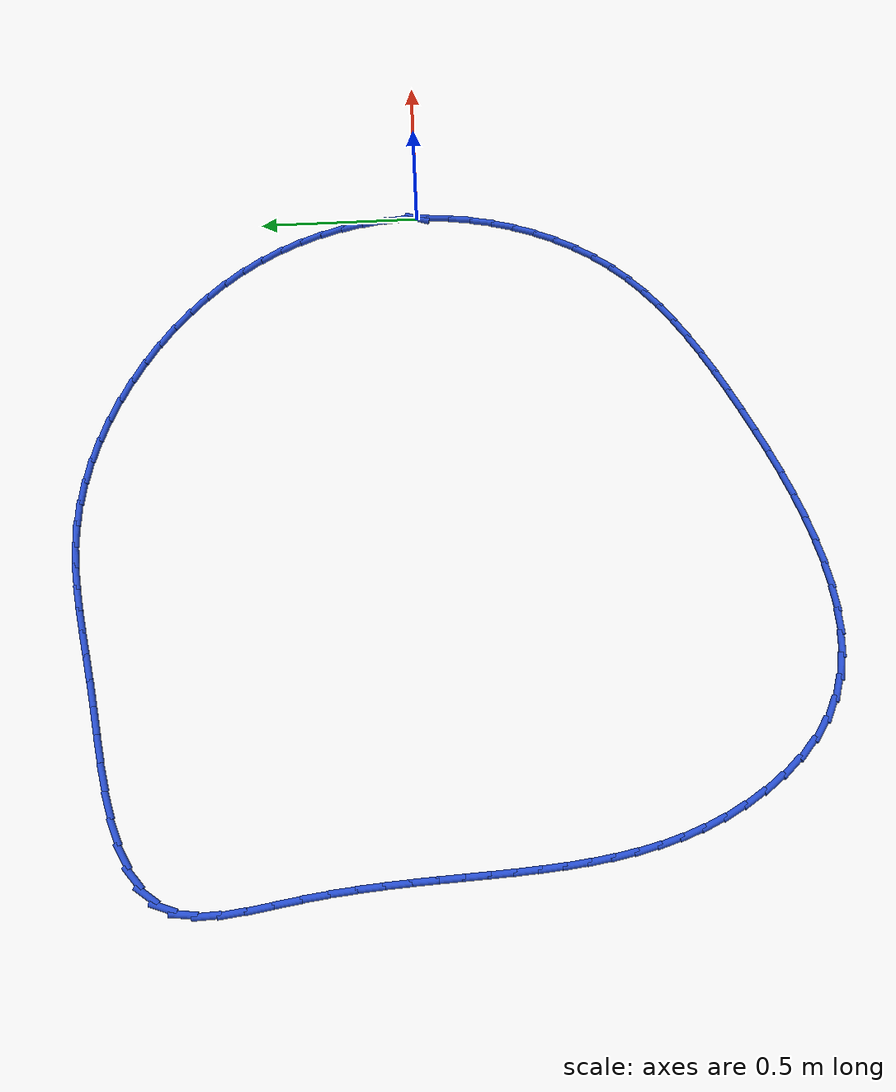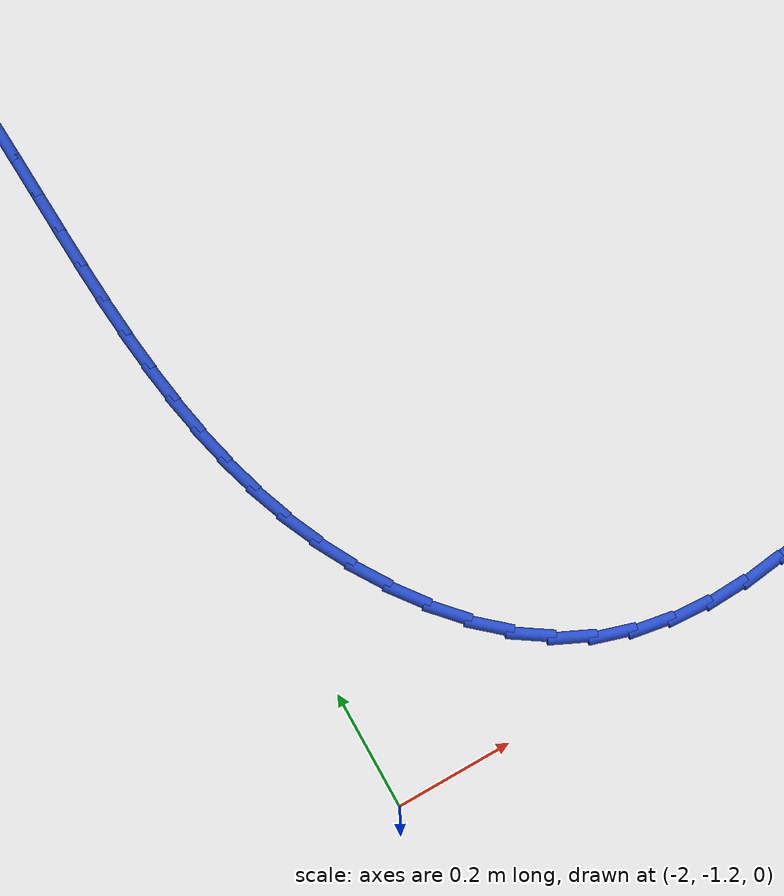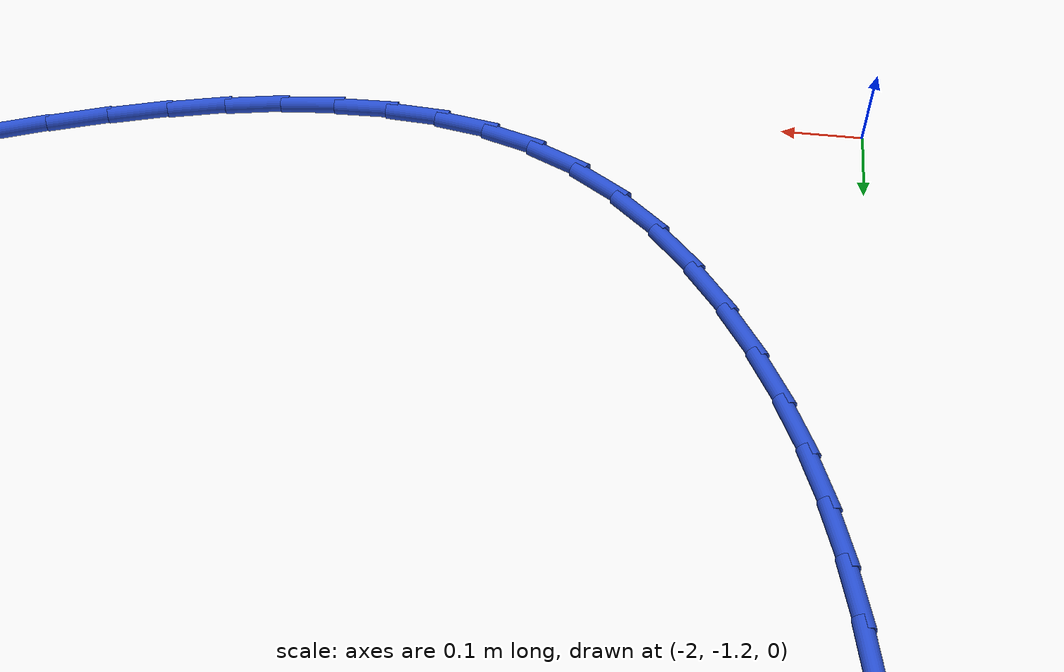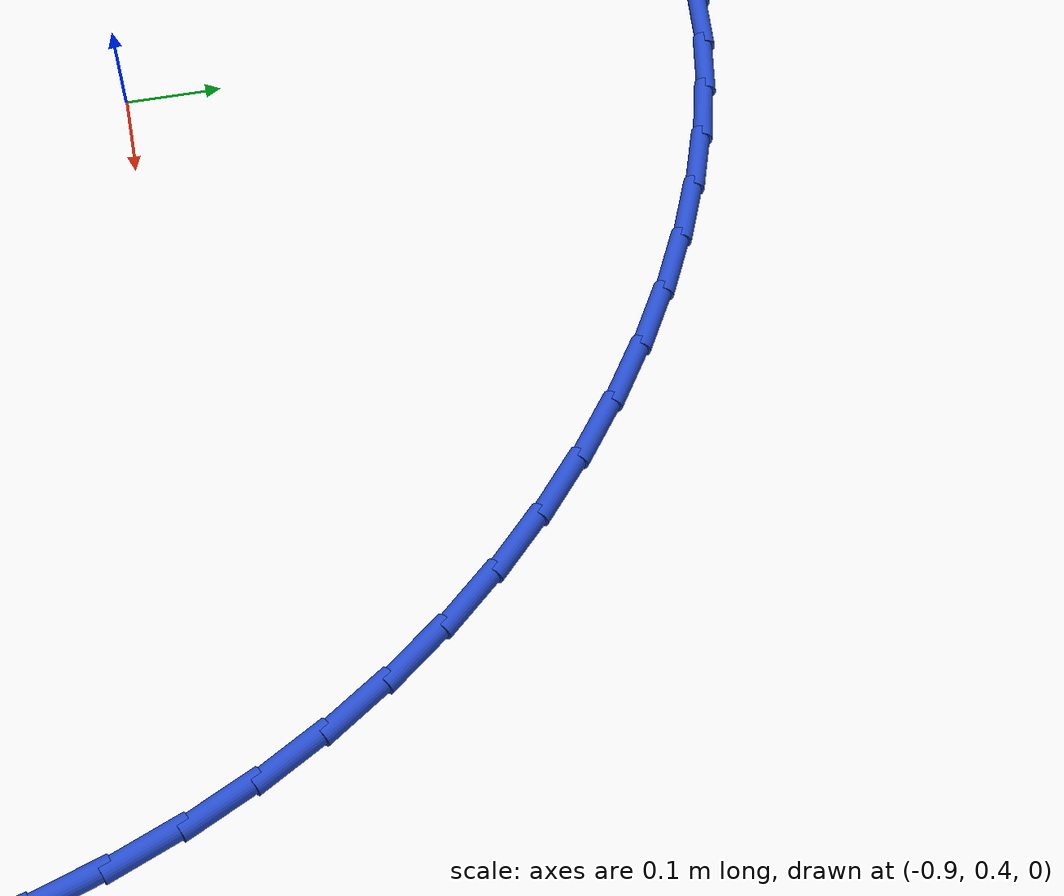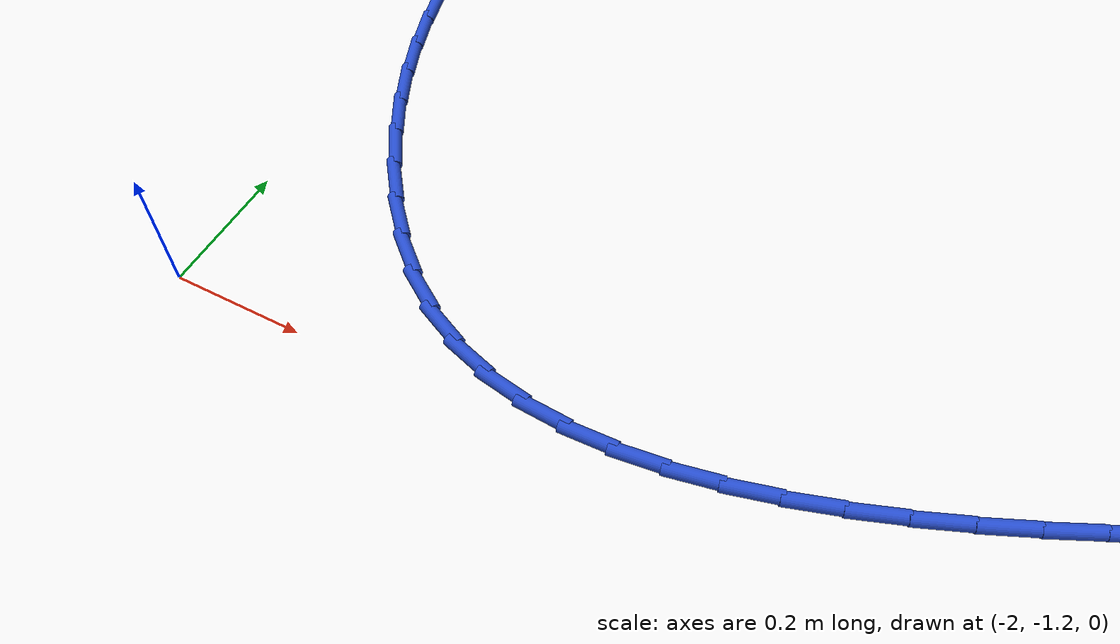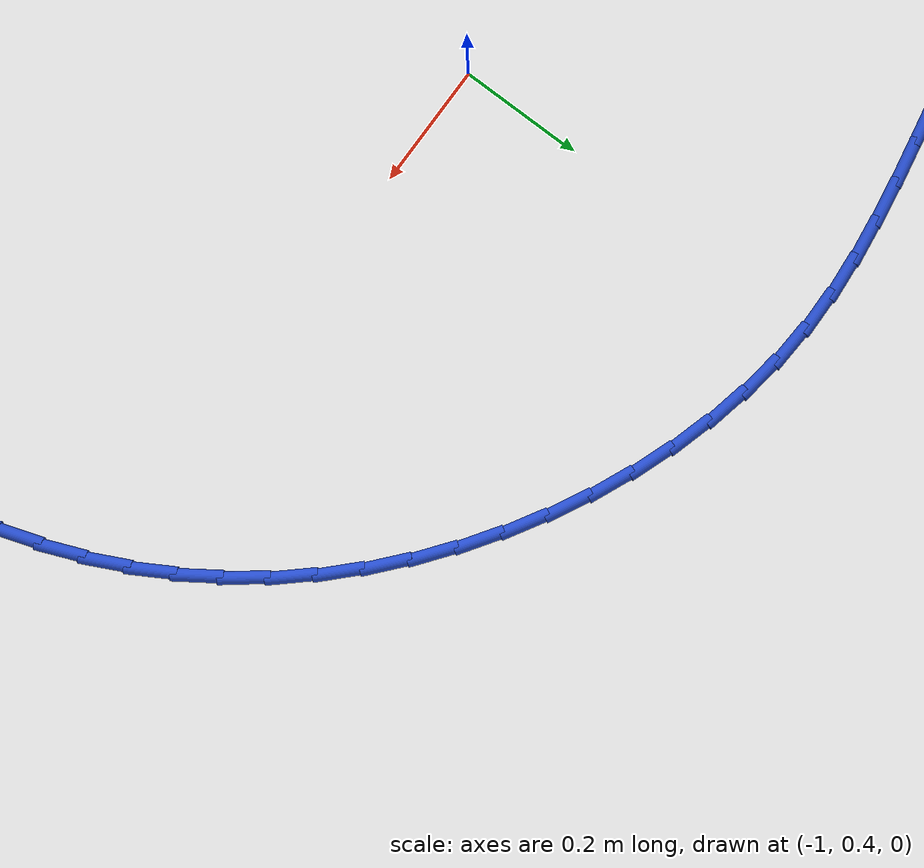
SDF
<sdf version="1.6">
 <world name="default">
  <light name="sun" type="directional">
   <pose>0 0 10 0 -0 0</pose>
   <diffuse>0.8 0.8 0.8 1</diffuse>
   <specular>0.2 0.2 0.2 1</specular>
   <attenuation>
    <range>1000</range>
    <constant>0.9</constant>
    <linear>0.01</linear>
    <quadratic>0.001</quadratic>
   </attenuation>
   <direction>-0.5 0.1 -0.9</direction>
  </light>
  <model name="ground_plane">
   <static>1</static>
   <link name="link">
    <collision name="collision">
     <geometry><plane><normal>0 0 1</normal><size>100 100</size></plane></geometry>
     <surface><friction><ode><mu>100</mu><mu2>50</mu2></ode></friction></surface>
    </collision>
    <visual name="visual">
     <cast_shadows>0</cast_shadows>
     <geometry><plane><normal>0 0 1</normal><size>100 100</size></plane></geometry>
     <material>
      <script><uri>file://media/materials/scripts/gazebo.material</uri><name>Gazebo/WhiteGlow</name></script>
     </material>
    </visual>
   </link>
  </model>
  <gravity>0 0 -9.8</gravity>
  <magnetic_field>6e-06 2.3e-05 -4.2e-05</magnetic_field>
  <atmosphere type="adiabatic"/>
  <physics name="default_physics" default="0" type="ode">
   <max_step_size>0.001</max_step_size>
   <real_time_factor>1</real_time_factor>
   <real_time_update_rate>1000</real_time_update_rate>
  </physics>
  <scene><ambient>0.4 0.4 0.4 1</ambient><background>0.7 0.7 0.7 1</background><shadows>1</shadows></scene>
  <spherical_coordinates>
   <surface_model>EARTH_WGS84</surface_model>
   <latitude_deg>0</latitude_deg>
   <longitude_deg>0</longitude_deg>
   <elevation>0</elevation>
   <heading_deg>0</heading_deg>
  </spherical_coordinates>
  <model name="line">
   <link name="link_0">
    <pose>-1.0408340855860843e-17 -5.551115123125783e-17 0.01 0 1.57 -1.5405701202909152</pose>
    <collision name="collision">
     <geometry><cylinder><radius>0.01</radius><length>0.08</length></cylinder></geometry>
    </collision>
    <visual name="visual">
     <material>
      <script><name>Gazebo/Blue</name><uri>file://media/materials/scripts/gazebo.material</uri></script>
     </material>
     <geometry><cylinder><radius>0.01</radius><length>0.08</length></cylinder></geometry>
    </visual>
   </link>
   <link name="link_1">
    <pose>-0.002102133106626445 0.0695255251843486 0.01 0 1.57 -1.4705244471689425</pose>
    <collision name="collision">
     <geometry><cylinder><radius>0.01</radius><length>0.08</length></cylinder></geometry>
    </collision>
    <visual name="visual">
     <material>
      <script><name>Gazebo/Blue</name><uri>file://media/materials/scripts/gazebo.material</uri></script>
     </material>
     <geometry><cylinder><radius>0.01</radius><length>0.08</length></cylinder></geometry>
    </visual>
   </link>
   <link name="link_2">
    <pose>-0.009032214268993836 0.13840664672821126 0.01 0 1.57 -1.4004155286825164</pose>
    <collision name="collision">
     <geometry><cylinder><radius>0.01</radius><length>0.08</length></cylinder></geometry>
    </collision>
    <visual name="visual">
     <material>
      <script><name>Gazebo/Blue</name><uri>file://media/materials/scripts/gazebo.material</uri></script>
     </material>
     <geometry><cylinder><radius>0.01</radius><length>0.08</length></cylinder></geometry>
    </visual>
   </link>
   <link name="link_3">
    <pose>-0.020733607389154633 0.2064186793257638 0.01 0 1.57 -1.3302316812102282</pose>
    <collision name="collision">
     <geometry><cylinder><radius>0.01</radius><length>0.08</length></cylinder></geometry>
    </collision>
    <visual name="visual">
     <material>
      <script><name>Gazebo/Blue</name><uri>file://media/materials/scripts/gazebo.material</uri></script>
     </material>
     <geometry><cylinder><radius>0.01</radius><length>0.08</length></cylinder></geometry>
    </visual>
   </link>
   <link name="link_4">
    <pose>-0.03714967636916126 0.2733369376711821 0.01 0 1.57 -1.2599575085506316</pose>
    <collision name="collision">
     <geometry><cylinder><radius>0.01</radius><length>0.08</length></cylinder></geometry>
    </collision>
    <visual name="visual">
     <material>
      <script><name>Gazebo/Blue</name><uri>file://media/materials/scripts/gazebo.material</uri></script>
     </material>
     <geometry><cylinder><radius>0.01</radius><length>0.08</length></cylinder></geometry>
    </visual>
   </link>
   <link name="link_5">
    <pose>-0.05822378511106613 0.3389367364586421 0.01 0 1.57 -1.1895788900700388</pose>
    <collision name="collision">
     <geometry><cylinder><radius>0.01</radius><length>0.08</length></cylinder></geometry>
    </collision>
    <visual name="visual">
     <material>
      <script><name>Gazebo/Blue</name><uri>file://media/materials/scripts/gazebo.material</uri></script>
     </material>
     <geometry><cylinder><radius>0.01</radius><length>0.08</length></cylinder></geometry>
    </visual>
   </link>
   <link name="link_6">
    <pose>-0.08389929751692168 0.4029933903823196 0.01 0 1.57 -1.1190879990135894</pose>
    <collision name="collision">
     <geometry><cylinder><radius>0.01</radius><length>0.08</length></cylinder></geometry>
    </collision>
    <visual name="visual">
     <material>
      <script><name>Gazebo/Blue</name><uri>file://media/materials/scripts/gazebo.material</uri></script>
     </material>
     <geometry><cylinder><radius>0.01</radius><length>0.08</length></cylinder></geometry>
    </visual>
   </link>
   <link name="link_7">
    <pose>-0.11411957748878035 0.46528221413639054 0.01 0 1.57 -1.0484881223766074</pose>
    <collision name="collision">
     <geometry><cylinder><radius>0.01</radius><length>0.08</length></cylinder></geometry>
    </collision>
    <visual name="visual">
     <material>
      <script><name>Gazebo/Blue</name><uri>file://media/materials/scripts/gazebo.material</uri></script>
     </material>
     <geometry><cylinder><radius>0.01</radius><length>0.08</length></cylinder></geometry>
    </visual>
   </link>
   <link name="link_8">
    <pose>-0.14882798892869453 0.5255785224150308 0.01 0 1.57 -0.9777980427152652</pose>
    <collision name="collision">
     <geometry><cylinder><radius>0.01</radius><length>0.08</length></cylinder></geometry>
    </collision>
    <visual name="visual">
     <material>
      <script><name>Gazebo/Blue</name><uri>file://media/materials/scripts/gazebo.material</uri></script>
     </material>
     <geometry><cylinder><radius>0.01</radius><length>0.08</length></cylinder></geometry>
    </visual>
   </link>
   <link name="link_9">
    <pose>-0.1879678957387167 0.5836576299124163 0.01 0 1.57 -0.9075542999481457</pose>
    <collision name="collision">
     <geometry><cylinder><radius>0.01</radius><length>0.08</length></cylinder></geometry>
    </collision>
    <visual name="visual">
     <material>
      <script><name>Gazebo/Blue</name><uri>file://media/materials/scripts/gazebo.material</uri></script>
     </material>
     <geometry><cylinder><radius>0.01</radius><length>0.08</length></cylinder></geometry>
    </visual>
   </link>
   <link name="link_10">
    <pose>-0.23143829991291925 0.6392952705631338 0.01 0 1.57 -0.8400449130114034</pose>
    <collision name="collision">
     <geometry><cylinder><radius>0.01</radius><length>0.08</length></cylinder></geometry>
    </collision>
    <visual name="visual">
     <material>
      <script><name>Gazebo/Blue</name><uri>file://media/materials/scripts/gazebo.material</uri></script>
     </material>
     <geometry><cylinder><radius>0.01</radius><length>0.08</length></cylinder></geometry>
    </visual>
   </link>
   <link name="link_11">
    <pose>-0.2789173890936182 0.6922692650988411 0.01 0 1.57 -0.7754309936989903</pose>
    <collision name="collision">
     <geometry><cylinder><radius>0.01</radius><length>0.08</length></cylinder></geometry>
    </collision>
    <visual name="visual">
     <material>
      <script><name>Gazebo/Blue</name><uri>file://media/materials/scripts/gazebo.material</uri></script>
     </material>
     <geometry><cylinder><radius>0.01</radius><length>0.08</length></cylinder></geometry>
    </visual>
   </link>
   <link name="link_12">
    <pose>-0.3300147797786927 0.7423580822800141 0.01 0 1.57 -0.7130405765119909</pose>
    <collision name="collision">
     <geometry><cylinder><radius>0.01</radius><length>0.08</length></cylinder></geometry>
    </collision>
    <visual name="visual">
     <material>
      <script><name>Gazebo/Blue</name><uri>file://media/materials/scripts/gazebo.material</uri></script>
     </material>
     <geometry><cylinder><radius>0.01</radius><length>0.08</length></cylinder></geometry>
    </visual>
   </link>
   <link name="link_13">
    <pose>-0.38434006712596264 0.7893401910688012 0.01 0 1.57 -0.6521967441203458</pose>
    <collision name="collision">
     <geometry><cylinder><radius>0.01</radius><length>0.08</length></cylinder></geometry>
    </collision>
    <visual name="visual">
     <material>
      <script><name>Gazebo/Blue</name><uri>file://media/materials/scripts/gazebo.material</uri></script>
     </material>
     <geometry><cylinder><radius>0.01</radius><length>0.08</length></cylinder></geometry>
    </visual>
   </link>
   <link name="link_14">
    <pose>-0.44150284629324776 0.8329940604273514 0.01 0 1.57 -0.5922203583246225</pose>
    <collision name="collision">
     <geometry><cylinder><radius>0.01</radius><length>0.08</length></cylinder></geometry>
    </collision>
    <visual name="visual">
     <material>
      <script><name>Gazebo/Blue</name><uri>file://media/materials/scripts/gazebo.material</uri></script>
     </material>
     <geometry><cylinder><radius>0.01</radius><length>0.08</length></cylinder></geometry>
    </visual>
   </link>
   <link name="link_15">
    <pose>-0.501112712438368 0.8730981593178132 0.01 0 1.57 -0.5324268377995418</pose>
    <collision name="collision">
     <geometry><cylinder><radius>0.01</radius><length>0.08</length></cylinder></geometry>
    </collision>
    <visual name="visual">
     <material>
      <script><name>Gazebo/Blue</name><uri>file://media/materials/scripts/gazebo.material</uri></script>
     </material>
     <geometry><cylinder><radius>0.01</radius><length>0.08</length></cylinder></geometry>
    </visual>
   </link>
   <link name="link_16">
    <pose>-0.5627792607191436 0.9094309567023364 0.01 0 1.57 -0.4721194599505032</pose>
    <collision name="collision">
     <geometry><cylinder><radius>0.01</radius><length>0.08</length></cylinder></geometry>
    </collision>
    <visual name="visual">
     <material>
      <script><name>Gazebo/Blue</name><uri>file://media/materials/scripts/gazebo.material</uri></script>
     </material>
     <geometry><cylinder><radius>0.01</radius><length>0.08</length></cylinder></geometry>
    </visual>
   </link>
   <link name="link_17">
    <pose>-0.6261120862933942 0.941770921543069 0.01 0 1.57 -0.4105810657619128</pose>
    <collision name="collision">
     <geometry><cylinder><radius>0.01</radius><length>0.08</length></cylinder></geometry>
    </collision>
    <visual name="visual">
     <material>
      <script><name>Gazebo/Blue</name><uri>file://media/materials/scripts/gazebo.material</uri></script>
     </material>
     <geometry><cylinder><radius>0.01</radius><length>0.08</length></cylinder></geometry>
    </visual>
   </link>
   <link name="link_18">
    <pose>-0.6907207843189399 0.9698965228021604 0.01 0 1.57 -0.3470660265471138</pose>
    <collision name="collision">
     <geometry><cylinder><radius>0.01</radius><length>0.08</length></cylinder></geometry>
    </collision>
    <visual name="visual">
     <material>
      <script><name>Gazebo/Blue</name><uri>file://media/materials/scripts/gazebo.material</uri></script>
     </material>
     <geometry><cylinder><radius>0.01</radius><length>0.08</length></cylinder></geometry>
    </visual>
   </link>
   <link name="link_19">
    <pose>-0.7562149499536007 0.9935862294417593 0.01 0 1.57 -0.28079472806204997</pose>
    <collision name="collision">
     <geometry><cylinder><radius>0.01</radius><length>0.08</length></cylinder></geometry>
    </collision>
    <visual name="visual">
     <material>
      <script><name>Gazebo/Blue</name><uri>file://media/materials/scripts/gazebo.material</uri></script>
     </material>
     <geometry><cylinder><radius>0.01</radius><length>0.08</length></cylinder></geometry>
    </visual>
   </link>
   <link name="link_20">
    <pose>-0.8222041783551963 1.0126185104240144 0.01 0 1.57 -0.2109537149791559</pose>
    <collision name="collision">
     <geometry><cylinder><radius>0.01</radius><length>0.08</length></cylinder></geometry>
    </collision>
    <visual name="visual">
     <material>
      <script><name>Gazebo/Blue</name><uri>file://media/materials/scripts/gazebo.material</uri></script>
     </material>
     <geometry><cylinder><radius>0.01</radius><length>0.08</length></cylinder></geometry>
    </visual>
   </link>
   <link name="link_21">
    <pose>-0.8882980646815466 1.0267718347110748 0.01 0 1.57 -0.13670605887592133</pose>
    <collision name="collision">
     <geometry><cylinder><radius>0.01</radius><length>0.08</length></cylinder></geometry>
    </collision>
    <visual name="visual">
     <material>
      <script><name>Gazebo/Blue</name><uri>file://media/materials/scripts/gazebo.material</uri></script>
     </material>
     <geometry><cylinder><radius>0.01</radius><length>0.08</length></cylinder></geometry>
    </visual>
   </link>
   <link name="link_22">
    <pose>-0.9541062040904715 1.0358246712650891 0.01 0 1.57 -0.057567431472103824</pose>
    <collision name="collision">
     <geometry><cylinder><radius>0.01</radius><length>0.08</length></cylinder></geometry>
    </collision>
    <visual name="visual">
     <material>
      <script><name>Gazebo/Blue</name><uri>file://media/materials/scripts/gazebo.material</uri></script>
     </material>
     <geometry><cylinder><radius>0.01</radius><length>0.08</length></cylinder></geometry>
    </visual>
   </link>
   <link name="link_23">
    <pose>-1.0192607395773203 1.0395795993939512 0.01 0 1.57 0.01903210949202566</pose>
    <collision name="collision">
     <geometry><cylinder><radius>0.01</radius><length>0.08</length></cylinder></geometry>
    </collision>
    <visual name="visual">
     <material>
      <script><name>Gazebo/Blue</name><uri>file://media/materials/scripts/gazebo.material</uri></script>
     </material>
     <geometry><cylinder><radius>0.01</radius><length>0.08</length></cylinder></geometry>
    </visual>
   </link>
   <link name="link_24">
    <pose>-1.083871302579857 1.0383497755915452 0.01 0 1.57 0.08357357899701412</pose>
    <collision name="collision">
     <geometry><cylinder><radius>0.01</radius><length>0.08</length></cylinder></geometry>
    </collision>
    <visual name="visual">
     <material>
      <script><name>Gazebo/Blue</name><uri>file://media/materials/scripts/gazebo.material</uri></script>
     </material>
     <geometry><cylinder><radius>0.01</radius><length>0.08</length></cylinder></geometry>
    </visual>
   </link>
   <link name="link_25">
    <pose>-1.148503231814042 1.0329356429938361 0.01 0 1.57 0.13376082898311506</pose>
    <collision name="collision">
     <geometry><cylinder><radius>0.01</radius><length>0.08</length></cylinder></geometry>
    </collision>
    <visual name="visual">
     <material>
      <script><name>Gazebo/Blue</name><uri>file://media/materials/scripts/gazebo.material</uri></script>
     </material>
     <geometry><cylinder><radius>0.01</radius><length>0.08</length></cylinder></geometry>
    </visual>
   </link>
   <link name="link_26">
    <pose>-1.2137400546234542 1.0241570937903821 0.01 0 1.57 0.1688405171898677</pose>
    <collision name="collision">
     <geometry><cylinder><radius>0.01</radius><length>0.08</length></cylinder></geometry>
    </collision>
    <visual name="visual">
     <material>
      <script><name>Gazebo/Blue</name><uri>file://media/materials/scripts/gazebo.material</uri></script>
     </material>
     <geometry><cylinder><radius>0.01</radius><length>0.08</length></cylinder></geometry>
    </visual>
   </link>
   <link name="link_27">
    <pose>-1.2801652983516725 1.0128340201707406 0.01 0 1.57 0.18903874474820354</pose>
    <collision name="collision">
     <geometry><cylinder><radius>0.01</radius><length>0.08</length></cylinder></geometry>
    </collision>
    <visual name="visual">
     <material>
      <script><name>Gazebo/Blue</name><uri>file://media/materials/scripts/gazebo.material</uri></script>
     </material>
     <geometry><cylinder><radius>0.01</radius><length>0.08</length></cylinder></geometry>
    </visual>
   </link>
   <link name="link_28">
    <pose>-1.3483624903422764 0.9997863143244703 0.01 0 1.57 0.19524011143308564</pose>
    <collision name="collision">
     <geometry><cylinder><radius>0.01</radius><length>0.08</length></cylinder></geometry>
    </collision>
    <visual name="visual">
     <material>
      <script><name>Gazebo/Blue</name><uri>file://media/materials/scripts/gazebo.material</uri></script>
     </material>
     <geometry><cylinder><radius>0.01</radius><length>0.08</length></cylinder></geometry>
    </visual>
   </link>
   <link name="link_29">
    <pose>-1.4189151579388446 0.9858338684411292 0.01 0 1.57 0.1887319768483386</pose>
    <collision name="collision">
     <geometry><cylinder><radius>0.01</radius><length>0.08</length></cylinder></geometry>
    </collision>
    <visual name="visual">
     <material>
      <script><name>Gazebo/Blue</name><uri>file://media/materials/scripts/gazebo.material</uri></script>
     </material>
     <geometry><cylinder><radius>0.01</radius><length>0.08</length></cylinder></geometry>
    </visual>
   </link>
   <link name="link_30">
    <pose>-1.4924068284849572 0.9717965747102755 0.01 0 1.57 0.1744701010912176</pose>
    <collision name="collision">
     <geometry><cylinder><radius>0.01</radius><length>0.08</length></cylinder></geometry>
    </collision>
    <visual name="visual">
     <material>
      <script><name>Gazebo/Blue</name><uri>file://media/materials/scripts/gazebo.material</uri></script>
     </material>
     <geometry><cylinder><radius>0.01</radius><length>0.08</length></cylinder></geometry>
    </visual>
   </link>
   <link name="link_31">
    <pose>-1.5691202102209683 0.9582749049660813 0.01 0 1.57 0.172253111187006</pose>
    <collision name="collision">
     <geometry><cylinder><radius>0.01</radius><length>0.08</length></cylinder></geometry>
    </collision>
    <visual name="visual">
     <material>
      <script><name>Gazebo/Blue</name><uri>file://media/materials/scripts/gazebo.material</uri></script>
     </material>
     <geometry><cylinder><radius>0.01</radius><length>0.08</length></cylinder></geometry>
    </visual>
   </link>
   <link name="link_32">
    <pose>-1.6476216962914736 0.9446174342574778 0.01 0 1.57 0.18801901341655594</pose>
    <collision name="collision">
     <geometry><cylinder><radius>0.01</radius><length>0.08</length></cylinder></geometry>
    </collision>
    <visual name="visual">
     <material>
      <script><name>Gazebo/Blue</name><uri>file://media/materials/scripts/gazebo.material</uri></script>
     </material>
     <geometry><cylinder><radius>0.01</radius><length>0.08</length></cylinder></geometry>
    </visual>
   </link>
   <link name="link_33">
    <pose>-1.7258699176187922 0.9297294300064118 0.01 0 1.57 0.2228727023862176</pose>
    <collision name="collision">
     <geometry><cylinder><radius>0.01</radius><length>0.08</length></cylinder></geometry>
    </collision>
    <visual name="visual">
     <material>
      <script><name>Gazebo/Blue</name><uri>file://media/materials/scripts/gazebo.material</uri></script>
     </material>
     <geometry><cylinder><radius>0.01</radius><length>0.08</length></cylinder></geometry>
    </visual>
   </link>
   <link name="link_34">
    <pose>-1.8018227962535631 0.9125156425769896 0.01 0 1.57 0.280534957972733</pose>
    <collision name="collision">
     <geometry><cylinder><radius>0.01</radius><length>0.08</length></cylinder></geometry>
    </collision>
    <visual name="visual">
     <material>
      <script><name>Gazebo/Blue</name><uri>file://media/materials/scripts/gazebo.material</uri></script>
     </material>
     <geometry><cylinder><radius>0.01</radius><length>0.08</length></cylinder></geometry>
    </visual>
   </link>
   <link name="link_35">
    <pose>-1.8734382542464258 0.891880822333317 0.01 0 1.57 0.3679794605629663</pose>
    <collision name="collision">
     <geometry><cylinder><radius>0.01</radius><length>0.08</length></cylinder></geometry>
    </collision>
    <visual name="visual">
     <material>
      <script><name>Gazebo/Blue</name><uri>file://media/materials/scripts/gazebo.material</uri></script>
     </material>
     <geometry><cylinder><radius>0.01</radius><length>0.08</length></cylinder></geometry>
    </visual>
   </link>
   <link name="link_36">
    <pose>-1.9386742136480186 0.8667297196395004 0.01 0 1.57 0.49626185235606635</pose>
    <collision name="collision">
     <geometry><cylinder><radius>0.01</radius><length>0.08</length></cylinder></geometry>
    </collision>
    <visual name="visual">
     <material>
      <script><name>Gazebo/Blue</name><uri>file://media/materials/scripts/gazebo.material</uri></script>
     </material>
     <geometry><cylinder><radius>0.01</radius><length>0.08</length></cylinder></geometry>
    </visual>
   </link>
   <link name="link_37">
    <pose>-1.9954885965089821 0.8359670848596459 0.01 0 1.57 0.6798352627536904</pose>
    <collision name="collision">
     <geometry><cylinder><radius>0.01</radius><length>0.08</length></cylinder></geometry>
    </collision>
    <visual name="visual">
     <material>
      <script><name>Gazebo/Blue</name><uri>file://media/materials/scripts/gazebo.material</uri></script>
     </material>
     <geometry><cylinder><radius>0.01</radius><length>0.08</length></cylinder></geometry>
    </visual>
   </link>
   <link name="link_38">
    <pose>-2.0418393248799553 0.7984976683578597 0.01 0 1.57 0.9288321167092531</pose>
    <collision name="collision">
     <geometry><cylinder><radius>0.01</radius><length>0.08</length></cylinder></geometry>
    </collision>
    <visual name="visual">
     <material>
      <script><name>Gazebo/Blue</name><uri>file://media/materials/scripts/gazebo.material</uri></script>
     </material>
     <geometry><cylinder><radius>0.01</radius><length>0.08</length></cylinder></geometry>
    </visual>
   </link>
   <link name="link_39">
    <pose>-2.0756843208115767 0.7532262204982477 0.01 0 1.57 1.2233063713826309</pose>
    <collision name="collision">
     <geometry><cylinder><radius>0.01</radius><length>0.08</length></cylinder></geometry>
    </collision>
    <visual name="visual">
     <material>
      <script><name>Gazebo/Blue</name><uri>file://media/materials/scripts/gazebo.material</uri></script>
     </material>
     <geometry><cylinder><radius>0.01</radius><length>0.08</length></cylinder></geometry>
    </visual>
   </link>
   <link name="link_40">
    <pose>-2.095249832140043 0.6992056918912777 0.01 0 1.57 1.4641513857978388</pose>
    <collision name="collision">
     <geometry><cylinder><radius>0.01</radius><length>0.08</length></cylinder></geometry>
    </collision>
    <visual name="visual">
     <material>
      <script><name>Gazebo/Blue</name><uri>file://media/materials/scripts/gazebo.material</uri></script>
     </material>
     <geometry><cylinder><radius>0.01</radius><length>0.08</length></cylinder></geometry>
    </visual>
   </link>
   <link name="link_41">
    <pose>-2.101886062930835 0.6372144397528273 0.01 0 1.57 -1.5278492818462748</pose>
    <collision name="collision">
     <geometry><cylinder><radius>0.01</radius><length>0.08</length></cylinder></geometry>
    </collision>
    <visual name="visual">
     <material>
      <script><name>Gazebo/Blue</name><uri>file://media/materials/scripts/gazebo.material</uri></script>
     </material>
     <geometry><cylinder><radius>0.01</radius><length>0.08</length></cylinder></geometry>
    </visual>
   </link>
   <link name="link_42">
    <pose>-2.0989608921073777 0.5691452125616334 0.01 0 1.57 -1.4456850766708114</pose>
    <collision name="collision">
     <geometry><cylinder><radius>0.01</radius><length>0.08</length></cylinder></geometry>
    </collision>
    <visual name="visual">
     <material>
      <script><name>Gazebo/Blue</name><uri>file://media/materials/scripts/gazebo.material</uri></script>
     </material>
     <geometry><cylinder><radius>0.01</radius><length>0.08</length></cylinder></geometry>
    </visual>
   </link>
   <link name="link_43">
    <pose>-2.089875926352483 0.49690938713004423 0.01 0 1.57 -1.413128333445715</pose>
    <collision name="collision">
     <geometry><cylinder><radius>0.01</radius><length>0.08</length></cylinder></geometry>
    </collision>
    <visual name="visual">
     <material>
      <script><name>Gazebo/Blue</name><uri>file://media/materials/scripts/gazebo.material</uri></script>
     </material>
     <geometry><cylinder><radius>0.01</radius><length>0.08</length></cylinder></geometry>
    </visual>
   </link>
   <link name="link_44">
    <pose>-2.0780327723489607 0.42241834027040936 0.01 0 1.57 -1.4216081317048483</pose>
    <collision name="collision">
     <geometry><cylinder><radius>0.01</radius><length>0.08</length></cylinder></geometry>
    </collision>
    <visual name="visual">
     <material>
      <script><name>Gazebo/Blue</name><uri>file://media/materials/scripts/gazebo.material</uri></script>
     </material>
     <geometry><cylinder><radius>0.01</radius><length>0.08</length></cylinder></geometry>
    </visual>
   </link>
   <link name="link_45">
    <pose>-2.066780820733039 0.3475575323506918 0.01 0 1.57 -1.450290320659064</pose>
    <collision name="collision">
     <geometry><cylinder><radius>0.01</radius><length>0.08</length></cylinder></geometry>
    </collision>
    <visual name="visual">
     <material>
      <script><name>Gazebo/Blue</name><uri>file://media/materials/scripts/gazebo.material</uri></script>
     </material>
     <geometry><cylinder><radius>0.01</radius><length>0.08</length></cylinder></geometry>
    </visual>
   </link>
   <link name="link_46">
    <pose>-2.057798854156311 0.27338324915063555 0.01 0 1.57 -1.4755231292306006</pose>
    <collision name="collision">
     <geometry><cylinder><radius>0.01</radius><length>0.08</length></cylinder></geometry>
    </collision>
    <visual name="visual">
     <material>
      <script><name>Gazebo/Blue</name><uri>file://media/materials/scripts/gazebo.material</uri></script>
     </material>
     <geometry><cylinder><radius>0.01</radius><length>0.08</length></cylinder></geometry>
    </visual>
   </link>
   <link name="link_47">
    <pose>-2.050783086121727 0.19996776585470538 0.01 0 1.57 -1.4956569528914676</pose>
    <collision name="collision">
     <geometry><cylinder><radius>0.01</radius><length>0.08</length></cylinder></geometry>
    </collision>
    <visual name="visual">
     <material>
      <script><name>Gazebo/Blue</name><uri>file://media/materials/scripts/gazebo.material</uri></script>
     </material>
     <geometry><cylinder><radius>0.01</radius><length>0.08</length></cylinder></geometry>
    </visual>
   </link>
   <link name="link_48">
    <pose>-2.045314548002396 0.12732618918177588 0.01 0 1.57 -1.5104643188645632</pose>
    <collision name="collision">
     <geometry><cylinder><radius>0.01</radius><length>0.08</length></cylinder></geometry>
    </collision>
    <visual name="visual">
     <material>
      <script><name>Gazebo/Blue</name><uri>file://media/materials/scripts/gazebo.material</uri></script>
     </material>
     <geometry><cylinder><radius>0.01</radius><length>0.08</length></cylinder></geometry>
    </visual>
   </link>
   <link name="link_49">
    <pose>-2.040974271171426 0.05547362585072061 0.01 0 1.57 -1.5197349971626906</pose>
    <collision name="collision">
     <geometry><cylinder><radius>0.01</radius><length>0.08</length></cylinder></geometry>
    </collision>
    <visual name="visual">
     <material>
      <script><name>Gazebo/Blue</name><uri>file://media/materials/scripts/gazebo.material</uri></script>
     </material>
     <geometry><cylinder><radius>0.01</radius><length>0.08</length></cylinder></geometry>
    </visual>
   </link>
   <link name="link_50">
    <pose>-2.037343287001922 -0.015574817419585977 0.01 0 1.57 -1.5232642017289684</pose>
    <collision name="collision">
     <geometry><cylinder><radius>0.01</radius><length>0.08</length></cylinder></geometry>
    </collision>
    <visual name="visual">
     <material>
      <script><name>Gazebo/Blue</name><uri>file://media/materials/scripts/gazebo.material</uri></script>
     </material>
     <geometry><cylinder><radius>0.01</radius><length>0.08</length></cylinder></geometry>
    </visual>
   </link>
   <link name="link_51">
    <pose>-2.034002626866993 -0.08580403391026961 0.01 0 1.57 -1.5208442474851251</pose>
    <collision name="collision">
     <geometry><cylinder><radius>0.01</radius><length>0.08</length></cylinder></geometry>
    </collision>
    <visual name="visual">
     <material>
      <script><name>Gazebo/Blue</name><uri>file://media/materials/scripts/gazebo.material</uri></script>
     </material>
     <geometry><cylinder><radius>0.01</radius><length>0.08</length></cylinder></geometry>
    </visual>
   </link>
   <link name="link_52">
    <pose>-2.0305333221397452 -0.1551989169024561 0.01 0 1.57 -1.5122610120824718</pose>
    <collision name="collision">
     <geometry><cylinder><radius>0.01</radius><length>0.08</length></cylinder></geometry>
    </collision>
    <visual name="visual">
     <material>
      <script><name>Gazebo/Blue</name><uri>file://media/materials/scripts/gazebo.material</uri></script>
     </material>
     <geometry><cylinder><radius>0.01</radius><length>0.08</length></cylinder></geometry>
    </visual>
   </link>
   <link name="link_53">
    <pose>-2.0265164041932855 -0.22374435967727127 0.01 0 1.57 -1.4972966701500068</pose>
    <collision name="collision">
     <geometry><cylinder><radius>0.01</radius><length>0.08</length></cylinder></geometry>
    </collision>
    <visual name="visual">
     <material>
      <script><name>Gazebo/Blue</name><uri>file://media/materials/scripts/gazebo.material</uri></script>
     </material>
     <geometry><cylinder><radius>0.01</radius><length>0.08</length></cylinder></geometry>
    </visual>
   </link>
   <link name="link_54">
    <pose>-2.021532904400722 -0.29142525551584086 0.01 0 1.57 -1.4757403714108293</pose>
    <collision name="collision">
     <geometry><cylinder><radius>0.01</radius><length>0.08</length></cylinder></geometry>
    </collision>
    <visual name="visual">
     <material>
      <script><name>Gazebo/Blue</name><uri>file://media/materials/scripts/gazebo.material</uri></script>
     </material>
     <geometry><cylinder><radius>0.01</radius><length>0.08</length></cylinder></geometry>
    </visual>
   </link>
   <link name="link_55">
    <pose>-2.015163854135161 -0.3582264976992906 0.01 0 1.57 -1.4474086503866608</pose>
    <collision name="collision">
     <geometry><cylinder><radius>0.01</radius><length>0.08</length></cylinder></geometry>
    </collision>
    <visual name="visual">
     <material>
      <script><name>Gazebo/Blue</name><uri>file://media/materials/scripts/gazebo.material</uri></script>
     </material>
     <geometry><cylinder><radius>0.01</radius><length>0.08</length></cylinder></geometry>
    </visual>
   </link>
   <link name="link_56">
    <pose>-2.0069902847697105 -0.42413297950874645 0.01 0 1.57 -1.4121770870693005</pose>
    <collision name="collision">
     <geometry><cylinder><radius>0.01</radius><length>0.08</length></cylinder></geometry>
    </collision>
    <visual name="visual">
     <material>
      <script><name>Gazebo/Blue</name><uri>file://media/materials/scripts/gazebo.material</uri></script>
     </material>
     <geometry><cylinder><radius>0.01</radius><length>0.08</length></cylinder></geometry>
    </visual>
   </link>
   <link name="link_57">
    <pose>-1.9965932276774767 -0.4891295942253341 0.01 0 1.57 -1.3700236531147492</pose>
    <collision name="collision">
     <geometry><cylinder><radius>0.01</radius><length>0.08</length></cylinder></geometry>
    </collision>
    <visual name="visual">
     <material>
      <script><name>Gazebo/Blue</name><uri>file://media/materials/scripts/gazebo.material</uri></script>
     </material>
     <geometry><cylinder><radius>0.01</radius><length>0.08</length></cylinder></geometry>
    </visual>
   </link>
   <link name="link_58">
    <pose>-1.9835537142315682 -0.5532012351301787 0.01 0 1.57 -1.3210817921121092</pose>
    <collision name="collision">
     <geometry><cylinder><radius>0.01</radius><length>0.08</length></cylinder></geometry>
    </collision>
    <visual name="visual">
     <material>
      <script><name>Gazebo/Blue</name><uri>file://media/materials/scripts/gazebo.material</uri></script>
     </material>
     <geometry><cylinder><radius>0.01</radius><length>0.08</length></cylinder></geometry>
    </visual>
   </link>
   <link name="link_59">
    <pose>-1.9674527758050906 -0.6163327955044073 0.01 0 1.57 -1.265697328672731</pose>
    <collision name="collision">
     <geometry><cylinder><radius>0.01</radius><length>0.08</length></cylinder></geometry>
    </collision>
    <visual name="visual">
     <material>
      <script><name>Gazebo/Blue</name><uri>file://media/materials/scripts/gazebo.material</uri></script>
     </material>
     <geometry><cylinder><radius>0.01</radius><length>0.08</length></cylinder></geometry>
    </visual>
   </link>
   <link name="link_60">
    <pose>-1.9478714437711515 -0.6785091686291451 0.01 0 1.57 -1.2044782427068537</pose>
    <collision name="collision">
     <geometry><cylinder><radius>0.01</radius><length>0.08</length></cylinder></geometry>
    </collision>
    <visual name="visual">
     <material>
      <script><name>Gazebo/Blue</name><uri>file://media/materials/scripts/gazebo.material</uri></script>
     </material>
     <geometry><cylinder><radius>0.01</radius><length>0.08</length></cylinder></geometry>
    </visual>
   </link>
   <link name="link_61">
    <pose>-1.9243907495028587 -0.7397152477855181 0.01 0 1.57 -1.138321942468348</pose>
    <collision name="collision">
     <geometry><cylinder><radius>0.01</radius><length>0.08</length></cylinder></geometry>
    </collision>
    <visual name="visual">
     <material>
      <script><name>Gazebo/Blue</name><uri>file://media/materials/scripts/gazebo.material</uri></script>
     </material>
     <geometry><cylinder><radius>0.01</radius><length>0.08</length></cylinder></geometry>
    </visual>
   </link>
   <link name="link_62">
    <pose>-1.896591724373319 -0.7999359262546519 0.01 0 1.57 -1.0684039930916056</pose>
    <collision name="collision">
     <geometry><cylinder><radius>0.01</radius><length>0.08</length></cylinder></geometry>
    </collision>
    <visual name="visual">
     <material>
      <script><name>Gazebo/Blue</name><uri>file://media/materials/scripts/gazebo.material</uri></script>
     </material>
     <geometry><cylinder><radius>0.01</radius><length>0.08</length></cylinder></geometry>
    </visual>
   </link>
   <link name="link_63">
    <pose>-1.8640553997556393 -0.859156097317672 0.01 0 1.57 -0.9955782036022818</pose>
    <collision name="collision">
     <geometry><cylinder><radius>0.01</radius><length>0.08</length></cylinder></geometry>
    </collision>
    <visual name="visual">
     <material>
      <script><name>Gazebo/Blue</name><uri>file://media/materials/scripts/gazebo.material</uri></script>
     </material>
     <geometry><cylinder><radius>0.01</radius><length>0.08</length></cylinder></geometry>
    </visual>
   </link>
   <link name="link_64">
    <pose>-1.826446130990257 -0.9171632899503452 0.01 0 1.57 -0.9160310982585077</pose>
    <collision name="collision">
     <geometry><cylinder><radius>0.01</radius><length>0.08</length></cylinder></geometry>
    </collision>
    <visual name="visual">
     <material>
      <script><name>Gazebo/Blue</name><uri>file://media/materials/scripts/gazebo.material</uri></script>
     </material>
     <geometry><cylinder><radius>0.01</radius><length>0.08</length></cylinder></geometry>
    </visual>
   </link>
   <link name="link_65">
    <pose>-1.783944845555824 -0.9725214607939207 0.01 0 1.57 -0.8241252092949589</pose>
    <collision name="collision">
     <geometry><cylinder><radius>0.01</radius><length>0.08</length></cylinder></geometry>
    </collision>
    <visual name="visual">
     <material>
      <script><name>Gazebo/Blue</name><uri>file://media/materials/scripts/gazebo.material</uri></script>
     </material>
     <geometry><cylinder><radius>0.01</radius><length>0.08</length></cylinder></geometry>
    </visual>
   </link>
   <link name="link_66">
    <pose>-1.7369301677630744 -1.02332629428435 0.01 0 1.57 -0.7142811408326679</pose>
    <collision name="collision">
     <geometry><cylinder><radius>0.01</radius><length>0.08</length></cylinder></geometry>
    </collision>
    <visual name="visual">
     <material>
      <script><name>Gazebo/Blue</name><uri>file://media/materials/scripts/gazebo.material</uri></script>
     </material>
     <geometry><cylinder><radius>0.01</radius><length>0.08</length></cylinder></geometry>
    </visual>
   </link>
   <link name="link_67">
    <pose>-1.685781121773524 -1.067672527755879 0.01 0 1.57 -0.5806944063820053</pose>
    <collision name="collision">
     <geometry><cylinder><radius>0.01</radius><length>0.08</length></cylinder></geometry>
    </collision>
    <visual name="visual">
     <material>
      <script><name>Gazebo/Blue</name><uri>file://media/materials/scripts/gazebo.material</uri></script>
     </material>
     <geometry><cylinder><radius>0.01</radius><length>0.08</length></cylinder></geometry>
    </visual>
   </link>
   <link name="link_68">
    <pose>-1.630876770397114 -1.1036986426126887 0.01 0 1.57 -0.4340349032520428</pose>
    <collision name="collision">
     <geometry><cylinder><radius>0.01</radius><length>0.08</length></cylinder></geometry>
    </collision>
    <visual name="visual">
     <material>
      <script><name>Gazebo/Blue</name><uri>file://media/materials/scripts/gazebo.material</uri></script>
     </material>
     <geometry><cylinder><radius>0.01</radius><length>0.08</length></cylinder></geometry>
    </visual>
   </link>
   <link name="link_69">
    <pose>-1.5725972091781195 -1.1307120165835525 0.01 0 1.57 -0.2943460408179107</pose>
    <collision name="collision">
     <geometry><cylinder><radius>0.01</radius><length>0.08</length></cylinder></geometry>
    </collision>
    <visual name="visual">
     <material>
      <script><name>Gazebo/Blue</name><uri>file://media/materials/scripts/gazebo.material</uri></script>
     </material>
     <geometry><cylinder><radius>0.01</radius><length>0.08</length></cylinder></geometry>
    </visual>
   </link>
   <link name="link_70">
    <pose>-1.5113236532400676 -1.1492872188001249 0.01 0 1.57 -0.16708724851145917</pose>
    <collision name="collision">
     <geometry><cylinder><radius>0.01</radius><length>0.08</length></cylinder></geometry>
    </collision>
    <visual name="visual">
     <material>
      <script><name>Gazebo/Blue</name><uri>file://media/materials/scripts/gazebo.material</uri></script>
     </material>
     <geometry><cylinder><radius>0.01</radius><length>0.08</length></cylinder></geometry>
    </visual>
   </link>
   <link name="link_71">
    <pose>-1.4474373737593977 -1.160062261665737 0.01 0 1.57 -0.05458908423581855</pose>
    <collision name="collision">
     <geometry><cylinder><radius>0.01</radius><length>0.08</length></cylinder></geometry>
    </collision>
    <visual name="visual">
     <material>
      <script><name>Gazebo/Blue</name><uri>file://media/materials/scripts/gazebo.material</uri></script>
     </material>
     <geometry><cylinder><radius>0.01</radius><length>0.08</length></cylinder></geometry>
    </visual>
   </link>
   <link name="link_72">
    <pose>-1.3813196419125475 -1.1636751575837194 0.01 0 1.57 0.04280637889310775</pose>
    <collision name="collision">
     <geometry><cylinder><radius>0.01</radius><length>0.08</length></cylinder></geometry>
    </collision>
    <visual name="visual">
     <material>
      <script><name>Gazebo/Blue</name><uri>file://media/materials/scripts/gazebo.material</uri></script>
     </material>
     <geometry><cylinder><radius>0.01</radius><length>0.08</length></cylinder></geometry>
    </visual>
   </link>
   <link name="link_73">
    <pose>-1.3133517288759584 -1.1607639189574048 0.01 0 1.57 0.12602445345225777</pose>
    <collision name="collision">
     <geometry><cylinder><radius>0.01</radius><length>0.08</length></cylinder></geometry>
    </collision>
    <visual name="visual">
     <material>
      <script><name>Gazebo/Blue</name><uri>file://media/materials/scripts/gazebo.material</uri></script>
     </material>
     <geometry><cylinder><radius>0.01</radius><length>0.08</length></cylinder></geometry>
    </visual>
   </link>
   <link name="link_74">
    <pose>-1.24391490582607 -1.1519665581901233 0.01 0 1.57 0.19658526422698266</pose>
    <collision name="collision">
     <geometry><cylinder><radius>0.01</radius><length>0.08</length></cylinder></geometry>
    </collision>
    <visual name="visual">
     <material>
      <script><name>Gazebo/Blue</name><uri>file://media/materials/scripts/gazebo.material</uri></script>
     </material>
     <geometry><cylinder><radius>0.01</radius><length>0.08</length></cylinder></geometry>
    </visual>
   </link>
   <link name="link_75">
    <pose>-1.1733904439393215 -1.137921087685207 0.01 0 1.57 0.25614973229140775</pose>
    <collision name="collision">
     <geometry><cylinder><radius>0.01</radius><length>0.08</length></cylinder></geometry>
    </collision>
    <visual name="visual">
     <material>
      <script><name>Gazebo/Blue</name><uri>file://media/materials/scripts/gazebo.material</uri></script>
     </material>
     <geometry><cylinder><radius>0.01</radius><length>0.08</length></cylinder></geometry>
    </visual>
   </link>
   <link name="link_76">
    <pose>-1.1021596143921524 -1.119265519845987 0.01 0 1.57 0.3062733308241275</pose>
    <collision name="collision">
     <geometry><cylinder><radius>0.01</radius><length>0.08</length></cylinder></geometry>
    </collision>
    <visual name="visual">
     <material>
      <script><name>Gazebo/Blue</name><uri>file://media/materials/scripts/gazebo.material</uri></script>
     </material>
     <geometry><cylinder><radius>0.01</radius><length>0.08</length></cylinder></geometry>
    </visual>
   </link>
   <link name="link_77">
    <pose>-1.0306036883610028 -1.096637867075795 0.01 0 1.57 0.34829924551156527</pose>
    <collision name="collision">
     <geometry><cylinder><radius>0.01</radius><length>0.08</length></cylinder></geometry>
    </collision>
    <visual name="visual">
     <material>
      <script><name>Gazebo/Blue</name><uri>file://media/materials/scripts/gazebo.material</uri></script>
     </material>
     <geometry><cylinder><radius>0.01</radius><length>0.08</length></cylinder></geometry>
    </visual>
   </link>
   <link name="link_78">
    <pose>-0.9591039370223118 -1.0706761417779613 0.01 0 1.57 0.3833280848628216</pose>
    <collision name="collision">
     <geometry><cylinder><radius>0.01</radius><length>0.08</length></cylinder></geometry>
    </collision>
    <visual name="visual">
     <material>
      <script><name>Gazebo/Blue</name><uri>file://media/materials/scripts/gazebo.material</uri></script>
     </material>
     <geometry><cylinder><radius>0.01</radius><length>0.08</length></cylinder></geometry>
    </visual>
   </link>
   <link name="link_79">
    <pose>-0.8880416315525195 -1.0420183563558183 0.01 0 1.57 0.41222238638234804</pose>
    <collision name="collision">
     <geometry><cylinder><radius>0.01</radius><length>0.08</length></cylinder></geometry>
    </collision>
    <visual name="visual">
     <material>
      <script><name>Gazebo/Blue</name><uri>file://media/materials/scripts/gazebo.material</uri></script>
     </material>
     <geometry><cylinder><radius>0.01</radius><length>0.08</length></cylinder></geometry>
    </visual>
   </link>
   <link name="link_80">
    <pose>-0.8177980431280653 -1.0113025232126969 0.01 0 1.57 0.43562194882539473</pose>
    <collision name="collision">
     <geometry><cylinder><radius>0.01</radius><length>0.08</length></cylinder></geometry>
    </collision>
    <visual name="visual">
     <material>
      <script><name>Gazebo/Blue</name><uri>file://media/materials/scripts/gazebo.material</uri></script>
     </material>
     <geometry><cylinder><radius>0.01</radius><length>0.08</length></cylinder></geometry>
    </visual>
   </link>
   <link name="link_81">
    <pose>-0.7487544429253893 -0.9791666547519289 0.01 0 1.57 0.4539630059041426</pose>
    <collision name="collision">
     <geometry><cylinder><radius>0.01</radius><length>0.08</length></cylinder></geometry>
    </collision>
    <visual name="visual">
     <material>
      <script><name>Gazebo/Blue</name><uri>file://media/materials/scripts/gazebo.material</uri></script>
     </material>
     <geometry><cylinder><radius>0.01</radius><length>0.08</length></cylinder></geometry>
    </visual>
   </link>
   <link name="link_82">
    <pose>-0.6812920213348049 -0.9462482171456453 0.01 0 1.57 0.4704491562566631</pose>
    <collision name="collision">
     <geometry><cylinder><radius>0.01</radius><length>0.08</length></cylinder></geometry>
    </collision>
    <visual name="visual">
     <material>
      <script><name>Gazebo/Blue</name><uri>file://media/materials/scripts/gazebo.material</uri></script>
     </material>
     <geometry><cylinder><radius>0.01</radius><length>0.08</length></cylinder></geometry>
    </visual>
   </link>
   <link name="link_83">
    <pose>-0.615752743571931 -0.912919457580948 0.01 0 1.57 0.4931107501400946</pose>
    <collision name="collision">
     <geometry><cylinder><radius>0.01</radius><length>0.08</length></cylinder></geometry>
    </collision>
    <visual name="visual">
     <material>
      <script><name>Gazebo/Blue</name><uri>file://media/materials/scripts/gazebo.material</uri></script>
     </material>
     <geometry><cylinder><radius>0.01</radius><length>0.08</length></cylinder></geometry>
    </visual>
   </link>
   <link name="link_84">
    <pose>-0.552376373493897 -0.8788615940582568 0.01 0 1.57 0.523650423112191</pose>
    <collision name="collision">
     <geometry><cylinder><radius>0.01</radius><length>0.08</length></cylinder></geometry>
    </collision>
    <visual name="visual">
     <material>
      <script><name>Gazebo/Blue</name><uri>file://media/materials/scripts/gazebo.material</uri></script>
     </material>
     <geometry><cylinder><radius>0.01</radius><length>0.08</length></cylinder></geometry>
    </visual>
   </link>
   <link name="link_85">
    <pose>-0.49138624056511165 -0.8436447242836823 0.01 0 1.57 0.5625057596293466</pose>
    <collision name="collision">
     <geometry><cylinder><radius>0.01</radius><length>0.08</length></cylinder></geometry>
    </collision>
    <visual name="visual">
     <material>
      <script><name>Gazebo/Blue</name><uri>file://media/materials/scripts/gazebo.material</uri></script>
     </material>
     <geometry><cylinder><radius>0.01</radius><length>0.08</length></cylinder></geometry>
    </visual>
   </link>
   <link name="link_86">
    <pose>-0.43300567424998526 -0.8068389459633342 0.01 0 1.57 0.6100154164361079</pose>
    <collision name="collision">
     <geometry><cylinder><radius>0.01</radius><length>0.08</length></cylinder></geometry>
    </collision>
    <visual name="visual">
     <material>
      <script><name>Gazebo/Blue</name><uri>file://media/materials/scripts/gazebo.material</uri></script>
     </material>
     <geometry><cylinder><radius>0.01</radius><length>0.08</length></cylinder></geometry>
    </visual>
   </link>
   <link name="link_87">
    <pose>-0.3774580040129278 -0.768014356803323 0.01 0 1.57 0.6663227954639206</pose>
    <collision name="collision">
     <geometry><cylinder><radius>0.01</radius><length>0.08</length></cylinder></geometry>
    </collision>
    <visual name="visual">
     <material>
      <script><name>Gazebo/Blue</name><uri>file://media/materials/scripts/gazebo.material</uri></script>
     </material>
     <geometry><cylinder><radius>0.01</radius><length>0.08</length></cylinder></geometry>
    </visual>
   </link>
   <link name="link_88">
    <pose>-0.3249665593183494 -0.7267410545097595 0.01 0 1.57 0.7312548427054251</pose>
    <collision name="collision">
     <geometry><cylinder><radius>0.01</radius><length>0.08</length></cylinder></geometry>
    </collision>
    <visual name="visual">
     <material>
      <script><name>Gazebo/Blue</name><uri>file://media/materials/scripts/gazebo.material</uri></script>
     </material>
     <geometry><cylinder><radius>0.01</radius><length>0.08</length></cylinder></geometry>
    </visual>
   </link>
   <link name="link_89">
    <pose>-0.2757546696306597 -0.6825891367887535 0.01 0 1.57 0.8041942831556176</pose>
    <collision name="collision">
     <geometry><cylinder><radius>0.01</radius><length>0.08</length></cylinder></geometry>
    </collision>
    <visual name="visual">
     <material>
      <script><name>Gazebo/Blue</name><uri>file://media/materials/scripts/gazebo.material</uri></script>
     </material>
     <geometry><cylinder><radius>0.01</radius><length>0.08</length></cylinder></geometry>
    </visual>
   </link>
   <link name="link_90">
    <pose>-0.23004566441426874 -0.6351287013464157 0.01 0 1.57 0.8839811733728394</pose>
    <collision name="collision">
     <geometry><cylinder><radius>0.01</radius><length>0.08</length></cylinder></geometry>
    </collision>
    <visual name="visual">
     <material>
      <script><name>Gazebo/Blue</name><uri>file://media/materials/scripts/gazebo.material</uri></script>
     </material>
     <geometry><cylinder><radius>0.01</radius><length>0.08</length></cylinder></geometry>
    </visual>
   </link>
   <link name="link_91">
    <pose>-0.1880628655584021 -0.5839299054879823 0.01 0 1.57 0.9669788482737915</pose>
    <collision name="collision">
     <geometry><cylinder><radius>0.01</radius><length>0.08</length></cylinder></geometry>
    </collision>
    <visual name="visual">
     <material>
      <script><name>Gazebo/Blue</name><uri>file://media/materials/scripts/gazebo.material</uri></script>
     </material>
     <geometry><cylinder><radius>0.01</radius><length>0.08</length></cylinder></geometry>
    </visual>
   </link>
   <link name="link_92">
    <pose>-0.15000525392020284 -0.5287544139672625 0.01 0 1.57 1.0461933124202483</pose>
    <collision name="collision">
     <geometry><cylinder><radius>0.01</radius><length>0.08</length></cylinder></geometry>
    </collision>
    <visual name="visual">
     <material>
      <script><name>Gazebo/Blue</name><uri>file://media/materials/scripts/gazebo.material</uri></script>
     </material>
     <geometry><cylinder><radius>0.01</radius><length>0.08</length></cylinder></geometry>
    </visual>
   </link>
   <link name="link_93">
    <pose>-0.11599342681422566 -0.4699805881596622 0.01 0 1.57 1.121128954699867</pose>
    <collision name="collision">
     <geometry><cylinder><radius>0.01</radius><length>0.08</length></cylinder></geometry>
    </collision>
    <visual name="visual">
     <material>
      <script><name>Gazebo/Blue</name><uri>file://media/materials/scripts/gazebo.material</uri></script>
     </material>
     <geometry><cylinder><radius>0.01</radius><length>0.08</length></cylinder></geometry>
    </visual>
   </link>
   <link name="link_94">
    <pose>-0.08613223419315376 -0.4081106846428741 0.01 0 1.57 1.1926964673612728</pose>
    <collision name="collision">
     <geometry><cylinder><radius>0.01</radius><length>0.08</length></cylinder></geometry>
    </collision>
    <visual name="visual">
     <material>
      <script><name>Gazebo/Blue</name><uri>file://media/materials/scripts/gazebo.material</uri></script>
     </material>
     <geometry><cylinder><radius>0.01</radius><length>0.08</length></cylinder></geometry>
    </visual>
   </link>
   <link name="link_95">
    <pose>-0.06052652600967052 -0.343646959994591 0.01 0 1.57 1.261806620507261</pose>
    <collision name="collision">
     <geometry><cylinder><radius>0.01</radius><length>0.08</length></cylinder></geometry>
    </collision>
    <visual name="visual">
     <material>
      <script><name>Gazebo/Blue</name><uri>file://media/materials/scripts/gazebo.material</uri></script>
     </material>
     <geometry><cylinder><radius>0.01</radius><length>0.08</length></cylinder></geometry>
    </visual>
   </link>
   <link name="link_96">
    <pose>-0.03928115221645943 -0.27709167079250646 0.01 0 1.57 1.329355955537625</pose>
    <collision name="collision">
     <geometry><cylinder><radius>0.01</radius><length>0.08</length></cylinder></geometry>
    </collision>
    <visual name="visual">
     <material>
      <script><name>Gazebo/Blue</name><uri>file://media/materials/scripts/gazebo.material</uri></script>
     </material>
     <geometry><cylinder><radius>0.01</radius><length>0.08</length></cylinder></geometry>
    </visual>
   </link>
   <link name="link_97">
    <pose>-0.022500962766203357 -0.20894707361431192 0.01 0 1.57 1.396224911633471</pose>
    <collision name="collision">
     <geometry><cylinder><radius>0.01</radius><length>0.08</length></cylinder></geometry>
    </collision>
    <visual name="visual">
     <material>
      <script><name>Gazebo/Blue</name><uri>file://media/materials/scripts/gazebo.material</uri></script>
     </material>
     <geometry><cylinder><radius>0.01</radius><length>0.08</length></cylinder></geometry>
    </visual>
   </link>
   <link name="link_98">
    <pose>-0.010290807611585885 -0.1397154250377008 0.01 0 1.57 1.4632827622898412</pose>
    <collision name="collision">
     <geometry><cylinder><radius>0.01</radius><length>0.08</length></cylinder></geometry>
    </collision>
    <visual name="visual">
     <material>
      <script><name>Gazebo/Blue</name><uri>file://media/materials/scripts/gazebo.material</uri></script>
     </material>
     <geometry><cylinder><radius>0.01</radius><length>0.08</length></cylinder></geometry>
    </visual>
   </link>
   <link name="link_99">
    <pose>-0.0027555367052903325 -0.06989898164036587 0.01 0 1.57 1.5313950288438507</pose>
    <collision name="collision">
     <geometry><cylinder><radius>0.01</radius><length>0.08</length></cylinder></geometry>
    </collision>
    <visual name="visual">
     <material>
      <script><name>Gazebo/Blue</name><uri>file://media/materials/scripts/gazebo.material</uri></script>
     </material>
     <geometry><cylinder><radius>0.01</radius><length>0.08</length></cylinder></geometry>
    </visual>
   </link>
   <link name="link_100">
    <pose>-2.7755575615628914e-17 -1.1102230246251565e-16 0.01 0 1.57 1.2679114584199251</pose>
    <collision name="collision">
     <geometry><cylinder><radius>0.01</radius><length>0.08</length></cylinder></geometry>
    </collision>
    <visual name="visual">
     <material>
      <script><name>Gazebo/Blue</name><uri>file://media/materials/scripts/gazebo.material</uri></script>
     </material>
     <geometry><cylinder><radius>0.01</radius><length>0.08</length></cylinder></geometry>
    </visual>
   </link>
  </model>
 </world>
</sdf>
